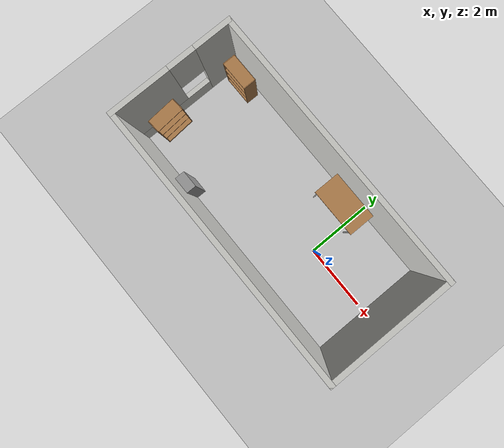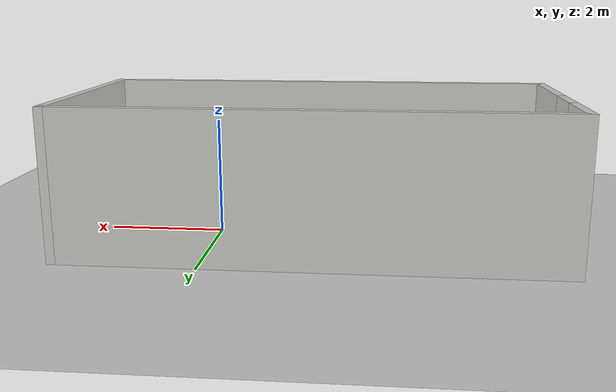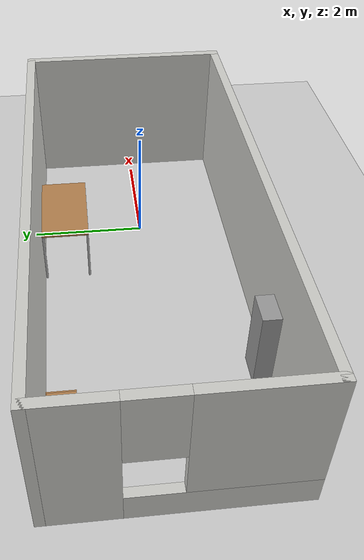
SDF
<sdf version="1.6">
 <world name="default">
  <light name="sun" type="directional">
   <pose>0 0 10 0 -0 0</pose>
   <diffuse>0.8 0.8 0.8 1</diffuse>
   <specular>0.2 0.2 0.2 1</specular>
   <attenuation>
    <range>1000</range>
    <constant>0.9</constant>
    <linear>0.01</linear>
    <quadratic>0.001</quadratic>
   </attenuation>
   <direction>-0.5 0.1 -0.9</direction>
  </light>
  <model name="ground_plane">
   <static>1</static>
   <link name="link">
    <collision name="collision">
     <geometry><plane><normal>0 0 1</normal><size>100 100</size></plane></geometry>
     <surface><friction><ode><mu>100</mu><mu2>50</mu2></ode></friction></surface>
    </collision>
    <visual name="visual">
     <cast_shadows>0</cast_shadows>
     <geometry><plane><normal>0 0 1</normal><size>100 100</size></plane></geometry>
     <material>
      <script><uri>file://media/materials/scripts/gazebo.material</uri><name>Gazebo/Grey</name></script>
     </material>
    </visual>
   </link>
  </model>
  <gravity>0 0 -9.8</gravity>
  <magnetic_field>6e-06 2.3e-05 -4.2e-05</magnetic_field>
  <atmosphere type="adiabatic"/>
  <physics name="default_physics" default="0" type="ode">
   <max_step_size>0.001</max_step_size>
   <real_time_factor>1</real_time_factor>
   <real_time_update_rate>1000</real_time_update_rate>
  </physics>
  <scene><ambient>0.4 0.4 0.4 1</ambient><background>0.7 0.7 0.7 1</background><shadows>1</shadows></scene>
  <audio><device>default</device></audio>
  <spherical_coordinates>
   <surface_model>EARTH_WGS84</surface_model>
   <latitude_deg>0</latitude_deg>
   <longitude_deg>0</longitude_deg>
   <elevation>0</elevation>
   <heading_deg>0</heading_deg>
  </spherical_coordinates>
  <model name="SetUpTiledRoom">
   <pose>-1.73588 0.095639 0 0 -0 0</pose>
   <link name="Wall_0">
    <pose>-4.05 0 0 0 -0 -1.5708</pose>
    <visual name="Wall_0_Visual_0">
     <pose>-1.2975 0 1.25 0 -0 0</pose>
     <geometry><box><size>1.155 0.15 2.5</size></box></geometry>
     <material>
      <script><uri>file://media/materials/scripts/gazebo.material</uri><name>Gazebo/CeilingTiled</name></script>
      <ambient>1 1 1 1</ambient>
     </material>
     <meta><layer>0</layer></meta>
    </visual>
    <collision name="Wall_0_Collision_0">
     <geometry><box><size>1.155 0.15 2.5</size></box></geometry>
     <pose>-1.2975 0 1.25 0 -0 0</pose>
    </collision>
    <visual name="Wall_0_Visual_1">
     <pose>0.5775 0 0.25 0 -0 0</pose>
     <geometry><box><size>2.595 0.15 0.5</size></box></geometry>
     <material>
      <script><uri>file://media/materials/scripts/gazebo.material</uri><name>Gazebo/CeilingTiled</name></script>
      <ambient>1 1 1 1</ambient>
     </material>
     <meta><layer>0</layer></meta>
    </visual>
    <collision name="Wall_0_Collision_1">
     <geometry><box><size>2.595 0.15 0.5</size></box></geometry>
     <pose>0.5775 0 0.25 0 -0 0</pose>
    </collision>
    <visual name="Wall_0_Visual_2">
     <pose>0.9775 0 1.5 0 -0 0</pose>
     <geometry><box><size>1.795 0.15 2</size></box></geometry>
     <material>
      <script><uri>file://media/materials/scripts/gazebo.material</uri><name>Gazebo/CeilingTiled</name></script>
      <ambient>1 1 1 1</ambient>
     </material>
     <meta><layer>0</layer></meta>
    </visual>
    <collision name="Wall_0_Collision_2">
     <geometry><box><size>1.795 0.15 2</size></box></geometry>
     <pose>0.9775 0 1.5 0 -0 0</pose>
    </collision>
    <visual name="Wall_0_Visual_3">
     <pose>-0.32 0 1.9 0 -0 0</pose>
     <geometry><box><size>0.8 0.15 1.2</size></box></geometry>
     <material>
      <script><uri>file://media/materials/scripts/gazebo.material</uri><name>Gazebo/CeilingTiled</name></script>
      <ambient>1 1 1 1</ambient>
     </material>
     <meta><layer>0</layer></meta>
    </visual>
    <collision name="Wall_0_Collision_3">
     <geometry><box><size>0.8 0.15 1.2</size></box></geometry>
     <pose>-0.32 0 1.9 0 -0 0</pose>
    </collision>
   </link>
   <link name="Wall_1">
    <collision name="Wall_1_Collision">
     <geometry><box><size>8.25 0.15 2.5</size></box></geometry>
     <pose>0 0 1.25 0 -0 0</pose>
    </collision>
    <visual name="Wall_1_Visual">
     <pose>0 0 1.25 0 -0 0</pose>
     <geometry><box><size>8.25 0.15 2.5</size></box></geometry>
     <material>
      <script><uri>file://media/materials/scripts/gazebo.material</uri><name>Gazebo/CeilingTiled</name></script>
      <ambient>1 1 1 1</ambient>
     </material>
     <meta><layer>0</layer></meta>
    </visual>
    <pose>0 -1.8 0 0 -0 0</pose>
   </link>
   <link name="Wall_2">
    <collision name="Wall_2_Collision">
     <geometry><box><size>3.75 0.15 2.5</size></box></geometry>
     <pose>0 0 1.25 0 -0 0</pose>
    </collision>
    <visual name="Wall_2_Visual">
     <pose>0 0 1.25 0 -0 0</pose>
     <geometry><box><size>3.75 0.15 2.5</size></box></geometry>
     <material>
      <script><uri>file://media/materials/scripts/gazebo.material</uri><name>Gazebo/CeilingTiled</name></script>
      <ambient>1 1 1 1</ambient>
     </material>
     <meta><layer>0</layer></meta>
    </visual>
    <pose>4.05 0 0 0 -0 1.5708</pose>
   </link>
   <link name="Wall_3">
    <collision name="Wall_3_Collision">
     <geometry><box><size>8.25 0.15 2.5</size></box></geometry>
     <pose>0 0 1.25 0 -0 0</pose>
    </collision>
    <visual name="Wall_3_Visual">
     <pose>0 0 1.25 0 -0 0</pose>
     <geometry><box><size>8.25 0.15 2.5</size></box></geometry>
     <material>
      <script><uri>file://media/materials/scripts/gazebo.material</uri><name>Gazebo/CeilingTiled</name></script>
      <ambient>1 1 1 1</ambient>
     </material>
     <meta><layer>0</layer></meta>
    </visual>
    <pose>0 1.8 0 0 -0 3.14159</pose>
   </link>
   <static>1</static>
  </model>
  <model name="bookshelf">
   <static>1</static>
   <link name="link">
    <inertial><mass>1</mass></inertial>
    <collision name="back">
     <pose>0 0.005 0.6 0 -0 0</pose>
     <geometry><box><size>0.9 0.01 1.2</size></box></geometry>
    </collision>
    <visual name="visual1">
     <pose>0 0.005 0.6 0 -0 0</pose>
     <geometry><box><size>0.9 0.01 1.2</size></box></geometry>
     <material>
      <script><uri>file://media/materials/scripts/gazebo.material</uri><name>Gazebo/Wood</name></script>
     </material>
    </visual>
    <collision name="left_side">
     <pose>0.45 -0.195 0.6 0 -0 0</pose>
     <geometry><box><size>0.02 0.4 1.2</size></box></geometry>
    </collision>
    <visual name="visual2">
     <pose>0.45 -0.195 0.6 0 -0 0</pose>
     <geometry><box><size>0.02 0.4 1.2</size></box></geometry>
     <material>
      <script><uri>file://media/materials/scripts/gazebo.material</uri><name>Gazebo/Wood</name></script>
     </material>
    </visual>
    <collision name="right_side">
     <pose>-0.45 -0.195 0.6 0 -0 0</pose>
     <geometry><box><size>0.02 0.4 1.2</size></box></geometry>
    </collision>
    <visual name="visual3">
     <pose>-0.45 -0.195 0.6 0 -0 0</pose>
     <geometry><box><size>0.02 0.4 1.2</size></box></geometry>
     <material>
      <script><uri>file://media/materials/scripts/gazebo.material</uri><name>Gazebo/Wood</name></script>
     </material>
    </visual>
    <collision name="bottom">
     <pose>0 -0.195 0.03 0 -0 0</pose>
     <geometry><box><size>0.88 0.4 0.06</size></box></geometry>
    </collision>
    <visual name="visual4">
     <pose>0 -0.195 0.03 0 -0 0</pose>
     <geometry><box><size>0.88 0.4 0.06</size></box></geometry>
     <material>
      <script><uri>file://media/materials/scripts/gazebo.material</uri><name>Gazebo/Wood</name></script>
     </material>
    </visual>
    <collision name="top">
     <pose>0 -0.195 1.19 0 -0 0</pose>
     <geometry><box><size>0.88 0.4 0.02</size></box></geometry>
    </collision>
    <visual name="visual5">
     <pose>0 -0.195 1.19 0 -0 0</pose>
     <geometry><box><size>0.88 0.4 0.02</size></box></geometry>
     <material>
      <script><uri>file://media/materials/scripts/gazebo.material</uri><name>Gazebo/Wood</name></script>
     </material>
    </visual>
    <collision name="low_shelf">
     <pose>0 -0.195 0.43 0 -0 0</pose>
     <geometry><box><size>0.88 0.4 0.02</size></box></geometry>
    </collision>
    <visual name="visual6">
     <pose>0 -0.195 0.43 0 -0 0</pose>
     <geometry><box><size>0.88 0.4 0.02</size></box></geometry>
     <material>
      <script><uri>file://media/materials/scripts/gazebo.material</uri><name>Gazebo/Wood</name></script>
     </material>
    </visual>
    <collision name="high_shelf">
     <pose>0 -0.195 0.8 0 -0 0</pose>
     <geometry><box><size>0.88 0.4 0.02</size></box></geometry>
    </collision>
    <visual name="visual7">
     <pose>0 -0.195 0.8 0 -0 0</pose>
     <geometry><box><size>0.88 0.4 0.02</size></box></geometry>
     <material>
      <script><uri>file://media/materials/scripts/gazebo.material</uri><name>Gazebo/Wood</name></script>
     </material>
    </visual>
   </link>
   <pose>-5.1271 1.71247 0 0 -0 0</pose>
  </model>
  <model name="bookshelf_0">
   <static>1</static>
   <link name="link">
    <inertial><mass>1</mass></inertial>
    <collision name="back">
     <pose>0 0.005 0.6 0 -0 0</pose>
     <geometry><box><size>0.9 0.01 1.2</size></box></geometry>
    </collision>
    <visual name="visual1">
     <pose>0 0.005 0.6 0 -0 0</pose>
     <geometry><box><size>0.9 0.01 1.2</size></box></geometry>
     <material>
      <script><uri>file://media/materials/scripts/gazebo.material</uri><name>Gazebo/Wood</name></script>
     </material>
    </visual>
    <collision name="left_side">
     <pose>0.45 -0.195 0.6 0 -0 0</pose>
     <geometry><box><size>0.02 0.4 1.2</size></box></geometry>
    </collision>
    <visual name="visual2">
     <pose>0.45 -0.195 0.6 0 -0 0</pose>
     <geometry><box><size>0.02 0.4 1.2</size></box></geometry>
     <material>
      <script><uri>file://media/materials/scripts/gazebo.material</uri><name>Gazebo/Wood</name></script>
     </material>
    </visual>
    <collision name="right_side">
     <pose>-0.45 -0.195 0.6 0 -0 0</pose>
     <geometry><box><size>0.02 0.4 1.2</size></box></geometry>
    </collision>
    <visual name="visual3">
     <pose>-0.45 -0.195 0.6 0 -0 0</pose>
     <geometry><box><size>0.02 0.4 1.2</size></box></geometry>
     <material>
      <script><uri>file://media/materials/scripts/gazebo.material</uri><name>Gazebo/Wood</name></script>
     </material>
    </visual>
    <collision name="bottom">
     <pose>0 -0.195 0.03 0 -0 0</pose>
     <geometry><box><size>0.88 0.4 0.06</size></box></geometry>
    </collision>
    <visual name="visual4">
     <pose>0 -0.195 0.03 0 -0 0</pose>
     <geometry><box><size>0.88 0.4 0.06</size></box></geometry>
     <material>
      <script><uri>file://media/materials/scripts/gazebo.material</uri><name>Gazebo/Wood</name></script>
     </material>
    </visual>
    <collision name="top">
     <pose>0 -0.195 1.19 0 -0 0</pose>
     <geometry><box><size>0.88 0.4 0.02</size></box></geometry>
    </collision>
    <visual name="visual5">
     <pose>0 -0.195 1.19 0 -0 0</pose>
     <geometry><box><size>0.88 0.4 0.02</size></box></geometry>
     <material>
      <script><uri>file://media/materials/scripts/gazebo.material</uri><name>Gazebo/Wood</name></script>
     </material>
    </visual>
    <collision name="low_shelf">
     <pose>0 -0.195 0.43 0 -0 0</pose>
     <geometry><box><size>0.88 0.4 0.02</size></box></geometry>
    </collision>
    <visual name="visual6">
     <pose>0 -0.195 0.43 0 -0 0</pose>
     <geometry><box><size>0.88 0.4 0.02</size></box></geometry>
     <material>
      <script><uri>file://media/materials/scripts/gazebo.material</uri><name>Gazebo/Wood</name></script>
     </material>
    </visual>
    <collision name="high_shelf">
     <pose>0 -0.195 0.8 0 -0 0</pose>
     <geometry><box><size>0.88 0.4 0.02</size></box></geometry>
    </collision>
    <visual name="visual7">
     <pose>0 -0.195 0.8 0 -0 0</pose>
     <geometry><box><size>0.88 0.4 0.02</size></box></geometry>
     <material>
      <script><uri>file://media/materials/scripts/gazebo.material</uri><name>Gazebo/Wood</name></script>
     </material>
    </visual>
   </link>
   <pose>-5.65042 -0.799583 0 0 -0 1.64644</pose>
  </model>
  <model name="table">
   <static>1</static>
   <link name="link">
    <collision name="surface">
     <pose>0 0 1 0 -0 0</pose>
     <geometry><box><size>1.5 0.8 0.03</size></box></geometry>
     <surface><friction><ode><mu>0.6</mu><mu2>0.6</mu2></ode></friction></surface>
    </collision>
    <visual name="visual1">
     <pose>0 0 1 0 -0 0</pose>
     <geometry><box><size>1.5 0.8 0.03</size></box></geometry>
     <material>
      <script><uri>file://media/materials/scripts/gazebo.material</uri><name>Gazebo/Wood</name></script>
     </material>
    </visual>
    <collision name="front_left_leg">
     <pose>0.68 0.38 0.5 0 -0 0</pose>
     <geometry><cylinder><radius>0.02</radius><length>1</length></cylinder></geometry>
    </collision>
    <visual name="front_left_leg">
     <pose>0.68 0.38 0.5 0 -0 0</pose>
     <geometry><cylinder><radius>0.02</radius><length>1</length></cylinder></geometry>
     <material>
      <script><uri>file://media/materials/scripts/gazebo.material</uri><name>Gazebo/Grey</name></script>
     </material>
    </visual>
    <collision name="front_right_leg">
     <pose>0.68 -0.38 0.5 0 -0 0</pose>
     <geometry><cylinder><radius>0.02</radius><length>1</length></cylinder></geometry>
    </collision>
    <visual name="front_right_leg">
     <pose>0.68 -0.38 0.5 0 -0 0</pose>
     <geometry><cylinder><radius>0.02</radius><length>1</length></cylinder></geometry>
     <material>
      <script><uri>file://media/materials/scripts/gazebo.material</uri><name>Gazebo/Grey</name></script>
     </material>
    </visual>
    <collision name="back_right_leg">
     <pose>-0.68 -0.38 0.5 0 -0 0</pose>
     <geometry><cylinder><radius>0.02</radius><length>1</length></cylinder></geometry>
    </collision>
    <visual name="back_right_leg">
     <pose>-0.68 -0.38 0.5 0 -0 0</pose>
     <geometry><cylinder><radius>0.02</radius><length>1</length></cylinder></geometry>
     <material>
      <script><uri>file://media/materials/scripts/gazebo.material</uri><name>Gazebo/Grey</name></script>
     </material>
    </visual>
    <collision name="back_left_leg">
     <pose>-0.68 0.38 0.5 0 -0 0</pose>
     <geometry><cylinder><radius>0.02</radius><length>1</length></cylinder></geometry>
    </collision>
    <visual name="back_left_leg">
     <pose>-0.68 0.38 0.5 0 -0 0</pose>
     <geometry><cylinder><radius>0.02</radius><length>1</length></cylinder></geometry>
     <material>
      <script><uri>file://media/materials/scripts/gazebo.material</uri><name>Gazebo/Grey</name></script>
     </material>
    </visual>
   </link>
   <pose>-0.532366 1.413 0 0 -0 0</pose>
  </model>
  <model name="unit_box">
   <pose>-3.64157 -1.48379 0.697688 0 -0 0</pose>
   <link name="link">
    <inertial>
     <mass>1</mass>
     <inertia>
      <ixx>0.166667</ixx>
      <ixy>0</ixy>
      <ixz>0</ixz>
      <iyy>0.166667</iyy>
      <iyz>0</iyz>
      <izz>0.166667</izz>
     </inertia>
    </inertial>
    <collision name="collision"><geometry><box><size>0.501015 0.291135 1.39538</size></box></geometry></collision>
    <visual name="visual">
     <geometry><box><size>0.501015 0.291135 1.39538</size></box></geometry>
     <material>
      <script><name>Gazebo/Grey</name><uri>file://media/materials/scripts/gazebo.material</uri></script>
     </material>
    </visual>
   </link>
  </model>
 </world>
</sdf>
